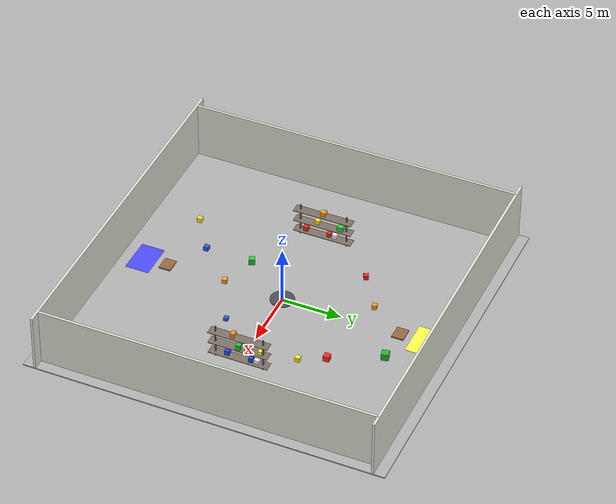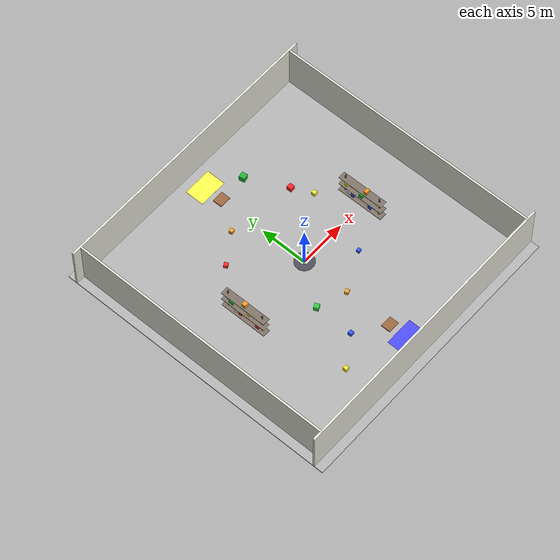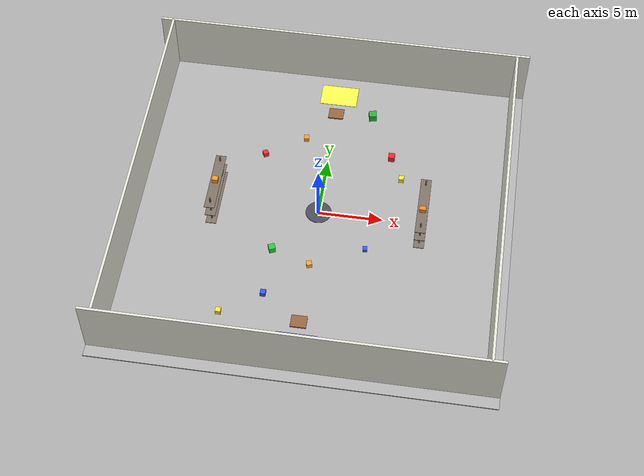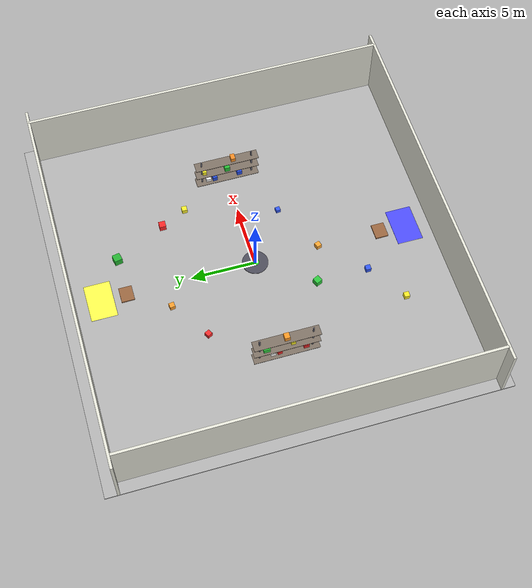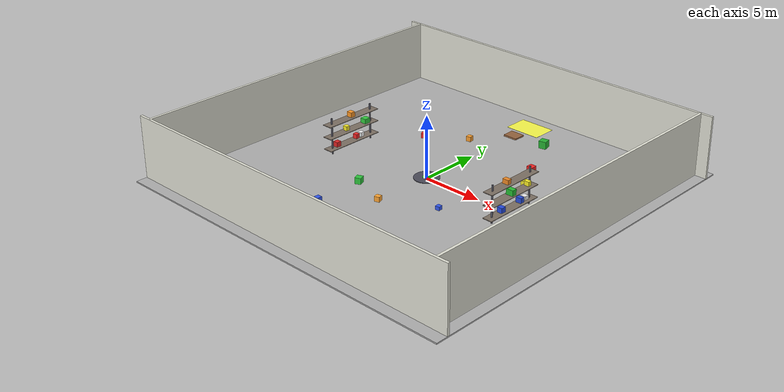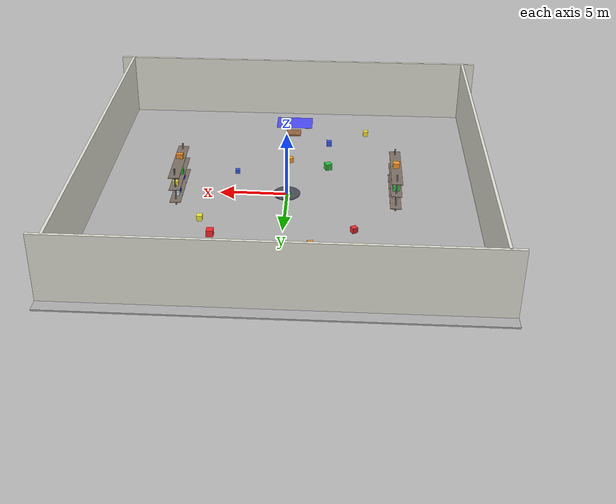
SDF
<?xml version="1.0" ?>
<sdf version='1.7'>
  <world name='warehouse'>

    <!-- LIGHTING -->
    <light name='warehouse_light_1' type='directional'>
      <cast_shadows>1</cast_shadows>
      <pose>0 0 15 0 -0 0</pose>
      <diffuse>0.9 0.9 0.9 1</diffuse>
      <specular>0.3 0.3 0.3 1</specular>
      <attenuation>
        <range>100</range>
        <constant>0.9</constant>
        <linear>0.01</linear>
        <quadratic>0.001</quadratic>
      </attenuation>
      <direction>0.1 0.1 -0.9</direction>
    </light>

    <light name='warehouse_light_2' type='point'>
      <pose>5 5 8 0 0 0</pose>
      <diffuse>0.8 0.8 0.8 1</diffuse>
      <specular>0.2 0.2 0.2 1</specular>
      <attenuation>
        <range>30</range>
        <constant>0.5</constant>
        <linear>0.01</linear>
        <quadratic>0.01</quadratic>
      </attenuation>
    </light>

    <light name='warehouse_light_3' type='point'>
      <pose>-5 -5 8 0 0 0</pose>
      <diffuse>0.8 0.8 0.8 1</diffuse>
      <specular>0.2 0.2 0.2 1</specular>
      <attenuation>
        <range>30</range>
        <constant>0.5</constant>
        <linear>0.01</linear>
        <quadratic>0.01</quadratic>
      </attenuation>
    </light>

    <!-- PHYSICS & ENVIRONMENT -->
    <gravity>0 0 -9.8</gravity>
    <magnetic_field>6e-06 2.3e-05 -4.2e-05</magnetic_field>
    <atmosphere type='adiabatic'/>

    <physics type='ode'>
      <max_step_size>0.001</max_step_size>
      <real_time_factor>1</real_time_factor>
      <real_time_update_rate>1000</real_time_update_rate>
    </physics>

    <scene>
      <ambient>0.5 0.5 0.5 1</ambient>
      <background>0.3 0.3 0.4 1</background>
      <shadows>1</shadows>
    </scene>

    <!-- GROUND PLANE (Warehouse Floor) -->
    <model name='warehouse_floor'>
      <static>1</static>
      <pose>0 0 0 0 0 0</pose>
      <link name='floor_link'>
        <collision name='floor_collision'>
          <geometry>
            <box>
              <size>30 30 0.1</size>
            </box>
          </geometry>
          <surface>
            <friction>
              <ode>
                <mu>100</mu>
                <mu2>50</mu2>
              </ode>
            </friction>
          </surface>
        </collision>
        <visual name='floor_visual'>
          <geometry>
            <box>
              <size>30 30 0.1</size>
            </box>
          </geometry>
          <material>
            <ambient>0.6 0.6 0.6 1</ambient>
            <diffuse>0.7 0.7 0.7 1</diffuse>
            <specular>0.1 0.1 0.1 1</specular>
          </material>
        </visual>
      </link>
    </model>

    <!-- WAREHOUSE WALLS -->

    <!-- North Wall -->
    <model name='wall_north'>
      <static>1</static>
      <pose>0 14 2.5 0 0 0</pose>
      <link name='link'>
        <collision name='collision'>
          <geometry>
            <box><size>30 0.2 5</size></box>
          </geometry>
        </collision>
        <visual name='visual'>
          <geometry>
            <box><size>30 0.2 5</size></box>
          </geometry>
          <material>
            <ambient>0.8 0.8 0.75 1</ambient>
            <diffuse>0.9 0.9 0.85 1</diffuse>
          </material>
        </visual>
      </link>
    </model>

    <!-- South Wall -->
    <model name='wall_south'>
      <static>1</static>
      <pose>0 -14 2.5 0 0 0</pose>
      <link name='link'>
        <collision name='collision'>
          <geometry>
            <box><size>30 0.2 5</size></box>
          </geometry>
        </collision>
        <visual name='visual'>
          <geometry>
            <box><size>30 0.2 5</size></box>
          </geometry>
          <material>
            <ambient>0.8 0.8 0.75 1</ambient>
            <diffuse>0.9 0.9 0.85 1</diffuse>
          </material>
        </visual>
      </link>
    </model>

    <!-- East Wall -->
    <model name='wall_east'>
      <static>1</static>
      <pose>14 0 2.5 0 0 1.5708</pose>
      <link name='link'>
        <collision name='collision'>
          <geometry>
            <box><size>28 0.2 5</size></box>
          </geometry>
        </collision>
        <visual name='visual'>
          <geometry>
            <box><size>28 0.2 5</size></box>
          </geometry>
          <material>
            <ambient>0.8 0.8 0.75 1</ambient>
            <diffuse>0.9 0.9 0.85 1</diffuse>
          </material>
        </visual>
      </link>
    </model>

    <!-- West Wall -->
    <model name='wall_west'>
      <static>1</static>
      <pose>-14 0 2.5 0 0 1.5708</pose>
      <link name='link'>
        <collision name='collision'>
          <geometry>
            <box><size>28 0.2 5</size></box>
          </geometry>
        </collision>
        <visual name='visual'>
          <geometry>
            <box><size>28 0.2 5</size></box>
          </geometry>
          <material>
            <ambient>0.8 0.8 0.75 1</ambient>
            <diffuse>0.9 0.9 0.85 1</diffuse>
          </material>
        </visual>
      </link>
    </model>

    <!-- SHELVING UNITS (Warehouse Racks) -->

    <!-- Shelf Unit 1 (Left side) -->
    <model name='shelf_unit_1'>
      <static>1</static>
      <pose>-8 0 0 0 0 0</pose>
      <link name='shelf_frame'>
        <!-- Vertical posts -->
        <visual name='post_1'>
          <pose>0 -2 1.5 0 0 0</pose>
          <geometry><box><size>0.1 0.1 3</size></box></geometry>
          <material>
            <ambient>0.3 0.3 0.35 1</ambient>
            <diffuse>0.4 0.4 0.45 1</diffuse>
          </material>
        </visual>
        <visual name='post_2'>
          <pose>0 2 1.5 0 0 0</pose>
          <geometry><box><size>0.1 0.1 3</size></box></geometry>
          <material>
            <ambient>0.3 0.3 0.35 1</ambient>
            <diffuse>0.4 0.4 0.45 1</diffuse>
          </material>
        </visual>
        <!-- Shelf platforms -->
        <visual name='shelf_bottom'>
          <pose>0 0 0.5 0 0 0</pose>
          <geometry><box><size>0.8 5 0.05</size></box></geometry>
          <material>
            <ambient>0.4 0.35 0.3 1</ambient>
            <diffuse>0.5 0.45 0.4 1</diffuse>
          </material>
        </visual>
        <visual name='shelf_middle'>
          <pose>0 0 1.5 0 0 0</pose>
          <geometry><box><size>0.8 5 0.05</size></box></geometry>
          <material>
            <ambient>0.4 0.35 0.3 1</ambient>
            <diffuse>0.5 0.45 0.4 1</diffuse>
          </material>
        </visual>
        <visual name='shelf_top'>
          <pose>0 0 2.5 0 0 0</pose>
          <geometry><box><size>0.8 5 0.05</size></box></geometry>
          <material>
            <ambient>0.4 0.35 0.3 1</ambient>
            <diffuse>0.5 0.45 0.4 1</diffuse>
          </material>
        </visual>
        <collision name='shelf_collision'>
          <pose>0 0 1.5 0 0 0</pose>
          <geometry><box><size>0.8 5 3</size></box></geometry>
        </collision>
      </link>
    </model>

    <!-- Shelf Unit 2 (Right side) -->
    <model name='shelf_unit_2'>
      <static>1</static>
      <pose>8 0 0 0 0 0</pose>
      <link name='shelf_frame'>
        <visual name='post_1'>
          <pose>0 -2 1.5 0 0 0</pose>
          <geometry><box><size>0.1 0.1 3</size></box></geometry>
          <material>
            <ambient>0.3 0.3 0.35 1</ambient>
            <diffuse>0.4 0.4 0.45 1</diffuse>
          </material>
        </visual>
        <visual name='post_2'>
          <pose>0 2 1.5 0 0 0</pose>
          <geometry><box><size>0.1 0.1 3</size></box></geometry>
          <material>
            <ambient>0.3 0.3 0.35 1</ambient>
            <diffuse>0.4 0.4 0.45 1</diffuse>
          </material>
        </visual>
        <visual name='shelf_bottom'>
          <pose>0 0 0.5 0 0 0</pose>
          <geometry><box><size>0.8 5 0.05</size></box></geometry>
          <material>
            <ambient>0.4 0.35 0.3 1</ambient>
            <diffuse>0.5 0.45 0.4 1</diffuse>
          </material>
        </visual>
        <visual name='shelf_middle'>
          <pose>0 0 1.5 0 0 0</pose>
          <geometry><box><size>0.8 5 0.05</size></box></geometry>
          <material>
            <ambient>0.4 0.35 0.3 1</ambient>
            <diffuse>0.5 0.45 0.4 1</diffuse>
          </material>
        </visual>
        <visual name='shelf_top'>
          <pose>0 0 2.5 0 0 0</pose>
          <geometry><box><size>0.8 5 0.05</size></box></geometry>
          <material>
            <ambient>0.4 0.35 0.3 1</ambient>
            <diffuse>0.5 0.45 0.4 1</diffuse>
          </material>
        </visual>
        <collision name='shelf_collision'>
          <pose>0 0 1.5 0 0 0</pose>
          <geometry><box><size>0.8 5 3</size></box></geometry>
        </collision>
      </link>
    </model>

    <!-- COLORED BOXES - RED (Fragile) -->

    <model name='red_box_1'>
      <static>1</static>
      <pose>-8 -1.5 0.75 0 0 0</pose>
      <link name='link'>
        <collision name='collision'>
          <geometry><box><size>0.4 0.4 0.4</size></box></geometry>
        </collision>
        <visual name='visual'>
          <geometry><box><size>0.4 0.4 0.4</size></box></geometry>
          <material>
            <ambient>0.8 0.1 0.1 1</ambient>
            <diffuse>0.9 0.15 0.15 1</diffuse>
            <specular>0.3 0.1 0.1 1</specular>
          </material>
        </visual>
      </link>
    </model>

    <model name='red_box_2'>
      <static>1</static>
      <pose>-8 0.5 0.75 0 0 0.1</pose>
      <link name='link'>
        <collision name='collision'>
          <geometry><box><size>0.35 0.35 0.35</size></box></geometry>
        </collision>
        <visual name='visual'>
          <geometry><box><size>0.35 0.35 0.35</size></box></geometry>
          <material>
            <ambient>0.85 0.1 0.1 1</ambient>
            <diffuse>0.95 0.15 0.15 1</diffuse>
            <specular>0.3 0.1 0.1 1</specular>
          </material>
        </visual>
      </link>
    </model>

    <model name='red_box_3'>
      <static>1</static>
      <pose>5 6 0.3 0 0 0</pose>
      <link name='link'>
        <collision name='collision'>
          <geometry><box><size>0.5 0.5 0.5</size></box></geometry>
        </collision>
        <visual name='visual'>
          <geometry><box><size>0.5 0.5 0.5</size></box></geometry>
          <material>
            <ambient>0.9 0.1 0.1 1</ambient>
            <diffuse>1.0 0.15 0.15 1</diffuse>
            <specular>0.4 0.1 0.1 1</specular>
          </material>
        </visual>
      </link>
    </model>

    <!-- COLORED BOXES - BLUE (Standard) -->

    <model name='blue_box_1'>
      <static>1</static>
      <pose>8 -1 0.75 0 0 0</pose>
      <link name='link'>
        <collision name='collision'>
          <geometry><box><size>0.4 0.4 0.4</size></box></geometry>
        </collision>
        <visual name='visual'>
          <geometry><box><size>0.4 0.4 0.4</size></box></geometry>
          <material>
            <ambient>0.1 0.2 0.8 1</ambient>
            <diffuse>0.15 0.3 0.9 1</diffuse>
            <specular>0.1 0.15 0.4 1</specular>
          </material>
        </visual>
      </link>
    </model>

    <model name='blue_box_2'>
      <static>1</static>
      <pose>8 1 0.75 0 0 0.05</pose>
      <link name='link'>
        <collision name='collision'>
          <geometry><box><size>0.45 0.35 0.4</size></box></geometry>
        </collision>
        <visual name='visual'>
          <geometry><box><size>0.45 0.35 0.4</size></box></geometry>
          <material>
            <ambient>0.1 0.2 0.75 1</ambient>
            <diffuse>0.15 0.3 0.85 1</diffuse>
            <specular>0.1 0.15 0.4 1</specular>
          </material>
        </visual>
      </link>
    </model>

    <model name='blue_box_3'>
      <static>1</static>
      <pose>-3 -8 0.25 0 0 0</pose>
      <link name='link'>
        <collision name='collision'>
          <geometry><box><size>0.4 0.4 0.4</size></box></geometry>
        </collision>
        <visual name='visual'>
          <geometry><box><size>0.4 0.4 0.4</size></box></geometry>
          <material>
            <ambient>0.1 0.25 0.85 1</ambient>
            <diffuse>0.2 0.35 0.95 1</diffuse>
            <specular>0.1 0.2 0.5 1</specular>
          </material>
        </visual>
      </link>
    </model>

    <!-- COLORED BOXES - GREEN (Large Items) -->

    <model name='green_box_1'>
      <static>1</static>
      <pose>-8 1.5 1.75 0 0 0</pose>
      <link name='link'>
        <collision name='collision'>
          <geometry><box><size>0.5 0.5 0.4</size></box></geometry>
        </collision>
        <visual name='visual'>
          <geometry><box><size>0.5 0.5 0.4</size></box></geometry>
          <material>
            <ambient>0.15 0.7 0.2 1</ambient>
            <diffuse>0.2 0.8 0.25 1</diffuse>
            <specular>0.1 0.3 0.1 1</specular>
          </material>
        </visual>
      </link>
    </model>

    <model name='green_box_2'>
      <static>1</static>
      <pose>8 0 1.75 0 0 0</pose>
      <link name='link'>
        <collision name='collision'>
          <geometry><box><size>0.6 0.4 0.45</size></box></geometry>
        </collision>
        <visual name='visual'>
          <geometry><box><size>0.6 0.4 0.45</size></box></geometry>
          <material>
            <ambient>0.1 0.65 0.15 1</ambient>
            <diffuse>0.15 0.75 0.2 1</diffuse>
            <specular>0.1 0.3 0.1 1</specular>
          </material>
        </visual>
      </link>
    </model>

    <model name='green_box_3'>
      <static>1</static>
      <pose>3 10 0.35 0 0 0.2</pose>
      <link name='link'>
        <collision name='collision'>
          <geometry><box><size>0.6 0.6 0.6</size></box></geometry>
        </collision>
        <visual name='visual'>
          <geometry><box><size>0.6 0.6 0.6</size></box></geometry>
          <material>
            <ambient>0.1 0.6 0.15 1</ambient>
            <diffuse>0.15 0.7 0.2 1</diffuse>
            <specular>0.1 0.3 0.1 1</specular>
          </material>
        </visual>
      </link>
    </model>

    <!-- COLORED BOXES - YELLOW (Hazardous) -->

    <model name='yellow_box_1'>
      <static>1</static>
      <pose>-8 -0.5 1.75 0 0 0</pose>
      <link name='link'>
        <collision name='collision'>
          <geometry><box><size>0.35 0.35 0.35</size></box></geometry>
        </collision>
        <visual name='visual'>
          <geometry><box><size>0.35 0.35 0.35</size></box></geometry>
          <material>
            <ambient>0.9 0.85 0.1 1</ambient>
            <diffuse>1.0 0.95 0.15 1</diffuse>
            <specular>0.5 0.45 0.1 1</specular>
          </material>
        </visual>
      </link>
    </model>

    <model name='yellow_box_2'>
      <static>1</static>
      <pose>8 1.8 1.75 0 0 0</pose>
      <link name='link'>
        <collision name='collision'>
          <geometry><box><size>0.4 0.3 0.35</size></box></geometry>
        </collision>
        <visual name='visual'>
          <geometry><box><size>0.4 0.3 0.35</size></box></geometry>
          <material>
            <ambient>0.95 0.9 0.1 1</ambient>
            <diffuse>1.0 0.95 0.15 1</diffuse>
            <specular>0.5 0.45 0.1 1</specular>
          </material>
        </visual>
      </link>
    </model>

    <model name='yellow_box_3'>
      <static>1</static>
      <pose>-6 -10 0.25 0 0 0</pose>
      <link name='link'>
        <collision name='collision'>
          <geometry><box><size>0.4 0.4 0.4</size></box></geometry>
        </collision>
        <visual name='visual'>
          <geometry><box><size>0.4 0.4 0.4</size></box></geometry>
          <material>
            <ambient>0.9 0.85 0.1 1</ambient>
            <diffuse>1.0 0.92 0.15 1</diffuse>
            <specular>0.5 0.45 0.1 1</specular>
          </material>
        </visual>
      </link>
    </model>

    <!-- COLORED BOXES - ORANGE (Express Shipping) -->

    <model name='orange_box_1'>
      <static>1</static>
      <pose>-8 0 2.75 0 0 0</pose>
      <link name='link'>
        <collision name='collision'>
          <geometry><box><size>0.45 0.4 0.4</size></box></geometry>
        </collision>
        <visual name='visual'>
          <geometry><box><size>0.45 0.4 0.4</size></box></geometry>
          <material>
            <ambient>0.95 0.5 0.1 1</ambient>
            <diffuse>1.0 0.6 0.15 1</diffuse>
            <specular>0.5 0.25 0.1 1</specular>
          </material>
        </visual>
      </link>
    </model>

    <model name='orange_box_2'>
      <static>1</static>
      <pose>8 -0.5 2.75 0 0 0</pose>
      <link name='link'>
        <collision name='collision'>
          <geometry><box><size>0.5 0.35 0.35</size></box></geometry>
        </collision>
        <visual name='visual'>
          <geometry><box><size>0.5 0.35 0.35</size></box></geometry>
          <material>
            <ambient>0.9 0.45 0.1 1</ambient>
            <diffuse>0.95 0.55 0.15 1</diffuse>
            <specular>0.5 0.25 0.1 1</specular>
          </material>
        </visual>
      </link>
    </model>

    <model name='orange_box_3'>
      <static>1</static>
      <pose>0 -5 0.25 0 0 0.3</pose>
      <link name='link'>
        <collision name='collision'>
          <geometry><box><size>0.4 0.4 0.4</size></box></geometry>
        </collision>
        <visual name='visual'>
          <geometry><box><size>0.4 0.4 0.4</size></box></geometry>
          <material>
            <ambient>0.95 0.55 0.1 1</ambient>
            <diffuse>1.0 0.65 0.2 1</diffuse>
            <specular>0.5 0.3 0.1 1</specular>
          </material>
        </visual>
      </link>
    </model>

    <!-- COLORED BOXES - WHITE (Returns) -->

    <model name='white_box_1'>
      <static>1</static>
      <pose>-8 1 0.75 0 0 0</pose>
      <link name='link'>
        <collision name='collision'>
          <geometry><box><size>0.35 0.35 0.35</size></box></geometry>
        </collision>
        <visual name='visual'>
          <geometry><box><size>0.35 0.35 0.35</size></box></geometry>
          <material>
            <ambient>0.95 0.95 0.95 1</ambient>
            <diffuse>1.0 1.0 1.0 1</diffuse>
            <specular>0.5 0.5 0.5 1</specular>
          </material>
        </visual>
      </link>
    </model>

    <model name='white_box_2'>
      <static>1</static>
      <pose>8 1.5 0.75 0 0 0</pose>
      <link name='link'>
        <collision name='collision'>
          <geometry><box><size>0.4 0.4 0.3</size></box></geometry>
        </collision>
        <visual name='visual'>
          <geometry><box><size>0.4 0.4 0.3</size></box></geometry>
          <material>
            <ambient>0.9 0.9 0.9 1</ambient>
            <diffuse>0.95 0.95 0.95 1</diffuse>
            <specular>0.4 0.4 0.4 1</specular>
          </material>
        </visual>
      </link>
    </model>

    <!-- PALLET - Loading Area -->

    <model name='pallet_1'>
      <static>1</static>
      <pose>0 10 0.1 0 0 0</pose>
      <link name='link'>
        <collision name='collision'>
          <geometry><box><size>1.2 1.0 0.15</size></box></geometry>
        </collision>
        <visual name='visual'>
          <geometry><box><size>1.2 1.0 0.15</size></box></geometry>
          <material>
            <ambient>0.5 0.35 0.2 1</ambient>
            <diffuse>0.6 0.4 0.25 1</diffuse>
          </material>
        </visual>
      </link>
    </model>

    <model name='pallet_2'>
      <static>1</static>
      <pose>0 -10 0.1 0 0 0</pose>
      <link name='link'>
        <collision name='collision'>
          <geometry><box><size>1.2 1.0 0.15</size></box></geometry>
        </collision>
        <visual name='visual'>
          <geometry><box><size>1.2 1.0 0.15</size></box></geometry>
          <material>
            <ambient>0.5 0.35 0.2 1</ambient>
            <diffuse>0.6 0.4 0.25 1</diffuse>
          </material>
        </visual>
      </link>
    </model>

    <!-- CHARGING STATION (Drone Home Base) -->

    <model name='charging_station'>
      <static>1</static>
      <pose>0 0 0.05 0 0 0</pose>
      <link name='link'>
        <collision name='collision'>
          <geometry>
            <cylinder>
              <radius>1.0</radius>
              <length>0.1</length>
            </cylinder>
          </geometry>
        </collision>
        <visual name='base_visual'>
          <geometry>
            <cylinder>
              <radius>1.0</radius>
              <length>0.1</length>
            </cylinder>
          </geometry>
          <material>
            <ambient>0.2 0.2 0.25 1</ambient>
            <diffuse>0.3 0.3 0.35 1</diffuse>
            <specular>0.4 0.4 0.4 1</specular>
          </material>
        </visual>
        <visual name='marker_visual'>
          <pose>0 0 0.06 0 0 0</pose>
          <geometry>
            <cylinder>
              <radius>0.3</radius>
              <length>0.02</length>
            </cylinder>
          </geometry>
          <material>
            <ambient>0.1 0.8 0.1 1</ambient>
            <diffuse>0.15 0.9 0.15 1</diffuse>
            <emissive>0.05 0.3 0.05 1</emissive>
          </material>
        </visual>
      </link>
    </model>

    <!-- FLOOR MARKINGS (Loading Zones) -->

    <model name='loading_zone_marker'>
      <static>1</static>
      <pose>0 12 0.06 0 0 0</pose>
      <link name='link'>
        <visual name='visual'>
          <geometry>
            <box><size>3 2 0.01</size></box>
          </geometry>
          <material>
            <ambient>0.9 0.9 0.2 1</ambient>
            <diffuse>1.0 1.0 0.3 1</diffuse>
          </material>
        </visual>
      </link>
    </model>

    <model name='shipping_zone_marker'>
      <static>1</static>
      <pose>0 -12 0.06 0 0 0</pose>
      <link name='link'>
        <visual name='visual'>
          <geometry>
            <box><size>3 2 0.01</size></box>
          </geometry>
          <material>
            <ambient>0.2 0.2 0.9 1</ambient>
            <diffuse>0.3 0.3 1.0 1</diffuse>
          </material>
        </visual>
      </link>
    </model>

    <!-- ADDITIONAL GROUND FLOOR BOXES (Scattered) -->

    <model name='red_box_floor_1'>
      <static>1</static>
      <pose>-5 5 0.25 0 0 0.5</pose>
      <link name='link'>
        <collision name='collision'>
          <geometry><box><size>0.4 0.4 0.4</size></box></geometry>
        </collision>
        <visual name='visual'>
          <geometry><box><size>0.4 0.4 0.4</size></box></geometry>
          <material>
            <ambient>0.85 0.12 0.12 1</ambient>
            <diffuse>0.95 0.18 0.18 1</diffuse>
            <specular>0.35 0.1 0.1 1</specular>
          </material>
        </visual>
      </link>
    </model>

    <model name='blue_box_floor_1'>
      <static>1</static>
      <pose>4 -3 0.2 0 0 0.1</pose>
      <link name='link'>
        <collision name='collision'>
          <geometry><box><size>0.35 0.35 0.3</size></box></geometry>
        </collision>
        <visual name='visual'>
          <geometry><box><size>0.35 0.35 0.3</size></box></geometry>
          <material>
            <ambient>0.15 0.25 0.85 1</ambient>
            <diffuse>0.2 0.35 0.95 1</diffuse>
            <specular>0.15 0.2 0.5 1</specular>
          </material>
        </visual>
      </link>
    </model>

    <model name='green_box_floor_1'>
      <static>1</static>
      <pose>-3 -4 0.3 0 0 0.4</pose>
      <link name='link'>
        <collision name='collision'>
          <geometry><box><size>0.5 0.5 0.5</size></box></geometry>
        </collision>
        <visual name='visual'>
          <geometry><box><size>0.5 0.5 0.5</size></box></geometry>
          <material>
            <ambient>0.12 0.68 0.18 1</ambient>
            <diffuse>0.18 0.78 0.24 1</diffuse>
            <specular>0.1 0.32 0.12 1</specular>
          </material>
        </visual>
      </link>
    </model>

    <model name='yellow_box_floor_1'>
      <static>1</static>
      <pose>6 4 0.25 0 0 0</pose>
      <link name='link'>
        <collision name='collision'>
          <geometry><box><size>0.4 0.4 0.4</size></box></geometry>
        </collision>
        <visual name='visual'>
          <geometry><box><size>0.4 0.4 0.4</size></box></geometry>
          <material>
            <ambient>0.92 0.88 0.12 1</ambient>
            <diffuse>0.98 0.94 0.18 1</diffuse>
            <specular>0.52 0.48 0.12 1</specular>
          </material>
        </visual>
      </link>
    </model>

    <model name='orange_box_floor_1'>
      <static>1</static>
      <pose>-2 7 0.25 0 0 0.15</pose>
      <link name='link'>
        <collision name='collision'>
          <geometry><box><size>0.4 0.4 0.4</size></box></geometry>
        </collision>
        <visual name='visual'>
          <geometry><box><size>0.4 0.4 0.4</size></box></geometry>
          <material>
            <ambient>0.92 0.52 0.12 1</ambient>
            <diffuse>0.98 0.62 0.18 1</diffuse>
            <specular>0.52 0.28 0.12 1</specular>
          </material>
        </visual>
      </link>
    </model>

  </world>
</sdf>
